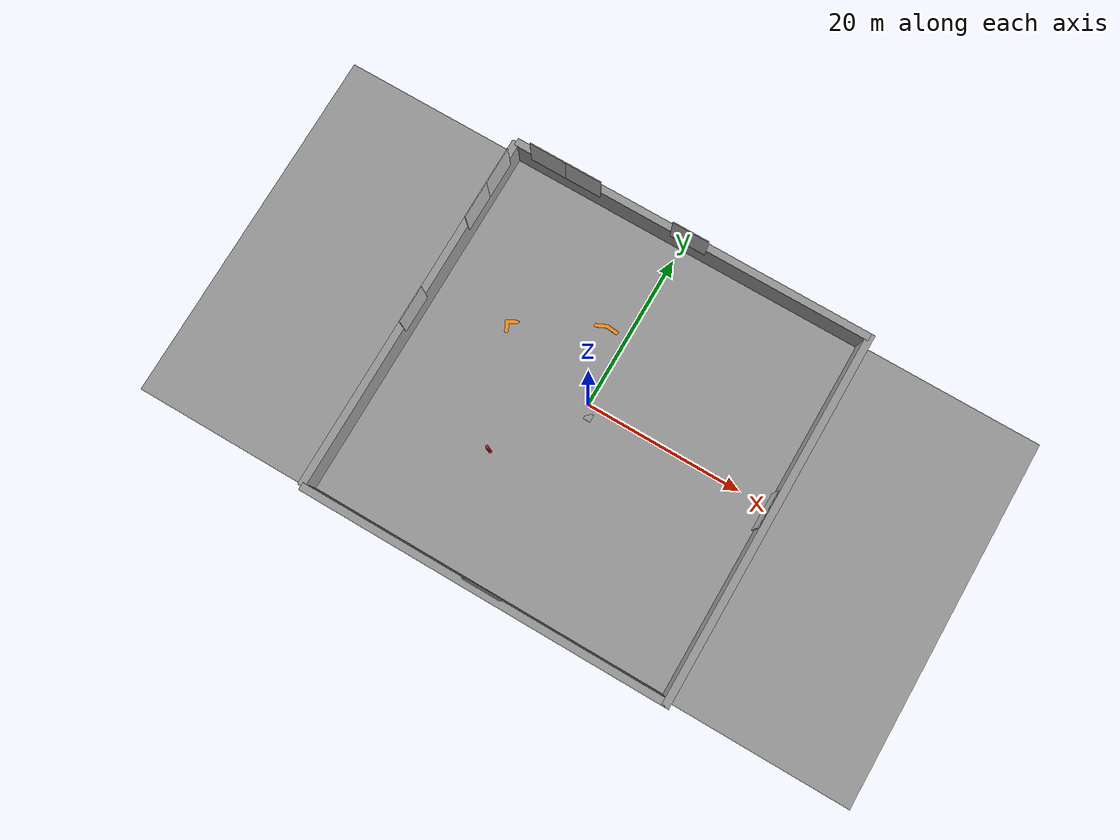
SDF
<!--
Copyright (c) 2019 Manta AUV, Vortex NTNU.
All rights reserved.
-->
<sdf version="1.5">
 <world name="empty_underwater">
  <physics name="default_physics" default="true" type="ode">
   <max_step_size>0.002</max_step_size>
   <real_time_factor>1</real_time_factor>
   <real_time_update_rate>500</real_time_update_rate>
   <ode><solver><type>quick</type><iters>50</iters><sor>0.5</sor></solver></ode>
  </physics>
  <scene>
   <ambient>0.01 0.01 0.01 1.0</ambient>
   <sky><clouds><speed>12</speed></clouds></sky>
   <shadows>1</shadows>
   <fog>
    <color>0.1 0.2 0.3 1.0</color>
    <type>linear</type>
    <density>0.001</density>
    <start>10</start>
    <end>200</end>
   </fog>
  </scene>
  <spherical_coordinates>
   <latitude_deg>56.71897669633431</latitude_deg>
   <longitude_deg>3.515625</longitude_deg>
  </spherical_coordinates>
  <include><uri>model://sun</uri></include>
  <include><name>pool</name><pose>0 0 -9 0 0 0</pose><uri>model://2019/pool</uri></include>
  <include><name>pole</name><pose>-8 -10 -5 0 0 0</pose><uri>model://2019/pole</uri></include>
  <include><name>30deg</name><pose>-2.5 12 -8.49 1.57 0 -1.15</pose><uri>model://2019/30deg</uri></include>
  <include><name>90deg</name><pose>-15 5.5 -8.49 0 0 0.45</pose><uri>model://2019/90deg</uri></include>
  <include><name>Dragur</name><uri>model://2019/vampire_logo</uri></include>
  <include><name>vortex1</name><pose>25 0 -3 0 -1.57 0</pose><uri>model://2019/vortex_logo</uri></include>
  <include><name>vortex2</name><pose>-25.5 0 -3 0 -1.57 3.14</pose><uri>model://2019/vortex_logo</uri></include>
  <include>
   <name>vortex3</name>
   <pose>0 -25.5 -3 1.57 -1.57 3.14</pose>
   <uri>model://2019/vortex_logo</uri>
  </include>
  <include>
   <name>vortex4</name>
   <pose>0 25.5 -3 -1.57 -1.57 3.14</pose>
   <uri>model://2019/vortex_logo</uri>
  </include>
  <light type="directional" name="sun0">
   <pose>8 -21 10 0 0.8 -2.8</pose>
   <diffuse>0.8 0.8 0.8 1</diffuse>
   <specular>0.2 0.2 0.2 1</specular>
   <attenuation>
    <range>1000</range>
    <constant>0.9</constant>
    <linear>0.01</linear>
    <quadratic>0.001</quadratic>
   </attenuation>
   <direction>-0.5 0.1 -0.9</direction>
  </light>
  <light type="directional" name="sun1">
   <pose>8 -20 10 0 0.8 0</pose>
   <diffuse>0.8 0.8 0.8 1</diffuse>
   <specular>0.2 0.2 0.2 1</specular>
   <attenuation>
    <range>1000</range>
    <constant>0.9</constant>
    <linear>0.01</linear>
    <quadratic>0.001</quadratic>
   </attenuation>
   <direction>-0.5 0.1 -0.9</direction>
  </light>
  <light type="directional" name="sun2">
   <pose>8 -19 10 0 0 0</pose>
   <diffuse>0.8 0.8 0.8 1</diffuse>
   <specular>0.2 0.2 0.2 1</specular>
   <attenuation>
    <range>1000</range>
    <constant>0.9</constant>
    <linear>0.01</linear>
    <quadratic>0.001</quadratic>
   </attenuation>
   <direction>-0.5 0.1 -0.9</direction>
  </light>
  <light type="directional" name="sun3">
   <pose>8 -19 10 1.75 0 0</pose>
   <diffuse>0.8 0.8 0.8 1</diffuse>
   <specular>0.2 0.2 0.2 1</specular>
   <attenuation>
    <range>1000</range>
    <constant>0.9</constant>
    <linear>0.01</linear>
    <quadratic>0.001</quadratic>
   </attenuation>
   <direction>-0.5 0.1 -0.9</direction>
  </light>
  <light type="directional" name="sun4">
   <pose>8 -19 10 1.75 0 2.9</pose>
   <diffuse>0.8 0.8 0.8 1</diffuse>
   <specular>0.2 0.2 0.2 1</specular>
   <attenuation>
    <range>1000</range>
    <constant>0.9</constant>
    <linear>0.01</linear>
    <quadratic>0.001</quadratic>
   </attenuation>
   <direction>-0.5 0.1 -0.9</direction>
  </light>
  <plugin name="underwater_current_plugin" filename="libuuv_underwater_current_ros_plugin.so">
   <namespace>hydrodynamics</namespace>
   <constant_current>
    <topic>current_velocity</topic>
    <velocity><mean>0</mean><min>0</min><max>5</max><mu>0.0</mu><noiseAmp>0.0</noiseAmp></velocity>
    <horizontal_angle>
     <mean>0</mean>
     <min>-3.141592653589793238</min>
     <max>3.141592653589793238</max>
     <mu>0.0</mu>
     <noiseAmp>0.0</noiseAmp>
    </horizontal_angle>
    <vertical_angle>
     <mean>0</mean>
     <min>-3.141592653589793238</min>
     <max>3.141592653589793238</max>
     <mu>0.0</mu>
     <noiseAmp>0.0</noiseAmp>
    </vertical_angle>
   </constant_current>
  </plugin>
  <plugin name="sc_interface" filename="libuuv_sc_ros_interface_plugin.so"/>
 </world>
</sdf>

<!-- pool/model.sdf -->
<sdf version='1.6'>
  <model name='pool'>
    <link name='link_0'>
      <pose frame=''>0 0 0 0 -0 0</pose>
      <inertial>
        <mass>1</mass>
        <inertia>
          <ixx>0.166667</ixx>
          <ixy>0</ixy>
          <ixz>0</ixz>
          <iyy>0.166667</iyy>
          <iyz>0</iyz>
          <izz>0.166667</izz>
        </inertia>
        <pose frame=''>0 0 0 0 -0 0</pose>
      </inertial>
      <gravity>1</gravity>
      <self_collide>0</self_collide>
      <kinematic>0</kinematic>
      <visual name='ModelPreview_0::link_0::visual_2'>
        <pose frame=''>0 0 0 0 -0 0</pose>
        <geometry>
          <box>
            <size>100 50 1</size>
          </box>
        </geometry>
        <material>
          <lighting>1</lighting>
          <script>
            <uri>file://media/materials/scripts/gazebo.material</uri>
            <name>Gazebo/Grey</name>
          </script>
          <ambient>0.3 0.3 0.3 1</ambient>
          <diffuse>0.7 0.7 0.7 1</diffuse>
          <specular>0.01 0.01 0.01 1</specular>
          <emissive>0 0 0 1</emissive>
          <shader type='vertex'>
            <normal_map>__default__</normal_map>
          </shader>
        </material>
        <cast_shadows>1</cast_shadows>
        <transparency>0</transparency>
      </visual>
      <visual name='ModelPreview_0::link_0::visual_3'>
        <pose frame=''>0 0 0 0 -0 0</pose>
        <geometry>
          <box>
            <size>100 50 1</size>
          </box>
        </geometry>
        <material>
          <lighting>1</lighting>
          <script>
            <uri>file://media/materials/scripts/gazebo.material</uri>
            <name>Gazebo/Grey</name>
          </script>
          <ambient>0.3 0.3 0.3 1</ambient>
          <diffuse>0.7 0.7 0.7 1</diffuse>
          <specular>0.01 0.01 0.01 1</specular>
          <emissive>0 0 0 1</emissive>
          <shader type='vertex'>
            <normal_map>__default__</normal_map>
          </shader>
        </material>
        <cast_shadows>1</cast_shadows>
        <transparency>0</transparency>
      </visual>
      <visual name='ModelPreview_0::link_0::visual_4'>
        <pose frame=''>0 0 0 0 -0 0</pose>
        <geometry>
          <box>
            <size>100 50 1</size>
          </box>
        </geometry>
        <material>
          <lighting>1</lighting>
          <script>
            <uri>file://media/materials/scripts/gazebo.material</uri>
            <name>Gazebo/Grey</name>
          </script>
          <ambient>0.3 0.3 0.3 1</ambient>
          <diffuse>0.7 0.7 0.7 1</diffuse>
          <specular>0.01 0.01 0.01 1</specular>
          <emissive>0 0 0 1</emissive>
          <shader type='vertex'>
            <normal_map>__default__</normal_map>
          </shader>
        </material>
        <cast_shadows>1</cast_shadows>
        <transparency>0</transparency>
      </visual>
      <visual name='visual'>
        <pose frame=''>0 0 0 0 -0 0</pose>
        <geometry>
          <box>
            <size>50 50 1</size>
          </box>
        </geometry>
        <material>
          <lighting>1</lighting>
          <script>
            <uri>file://media/materials/scripts/gazebo.material</uri>
            <name>Gazebo/Grey</name>
          </script>
          <ambient>0.3 0.3 0.3 1</ambient>
          <diffuse>0.7 0.7 0.7 1</diffuse>
          <specular>0.01 0.01 0.01 1</specular>
          <emissive>0 0 0 1</emissive>
          <shader type='vertex'>
            <normal_map>__default__</normal_map>
          </shader>
        </material>
        <cast_shadows>1</cast_shadows>
        <transparency>0</transparency>
      </visual>
      <visual name='ModelPreview_0::link_0::visual_1'>
        <pose frame=''>0 0 0 0 -0 0</pose>
        <geometry>
          <box>
            <size>100 50 1</size>
          </box>
        </geometry>
        <material>
          <lighting>1</lighting>
          <script>
            <uri>file://media/materials/scripts/gazebo.material</uri>
            <name>Gazebo/Grey</name>
          </script>
          <ambient>0.3 0.3 0.3 1</ambient>
          <diffuse>0.7 0.7 0.7 1</diffuse>
          <specular>0.01 0.01 0.01 1</specular>
          <emissive>0 0 0 1</emissive>
          <shader type='vertex'>
            <normal_map>__default__</normal_map>
          </shader>
        </material>
        <cast_shadows>1</cast_shadows>
        <transparency>0</transparency>
      </visual>
      <visual name='ModelPreview_0::link_0::visual_5'>
        <pose frame=''>0 0 0 0 -0 0</pose>
        <geometry>
          <box>
            <size>100 50 1</size>
          </box>
        </geometry>
        <material>
          <lighting>1</lighting>
          <script>
            <uri>file://media/materials/scripts/gazebo.material</uri>
            <name>Gazebo/Grey</name>
          </script>
          <ambient>0.3 0.3 0.3 1</ambient>
          <diffuse>0.7 0.7 0.7 1</diffuse>
          <specular>0.01 0.01 0.01 1</specular>
          <emissive>0 0 0 1</emissive>
          <shader type='vertex'>
            <normal_map>__default__</normal_map>
          </shader>
        </material>
        <cast_shadows>1</cast_shadows>
        <transparency>0</transparency>
      </visual>
      <collision name='collision'>
        <laser_retro>0</laser_retro>
        <max_contacts>10</max_contacts>
        <pose frame=''>0 0 0 0 -0 0</pose>
        <geometry>
          <box>
            <size>50 50 1</size>
          </box>
        </geometry>
        <surface>
          <friction>
            <ode>
              <mu>1</mu>
              <mu2>1</mu2>
              <fdir1>0 0 0</fdir1>
              <slip1>0</slip1>
              <slip2>0</slip2>
            </ode>
            <torsional>
              <coefficient>1</coefficient>
              <patch_radius>0</patch_radius>
              <surface_radius>0</surface_radius>
              <use_patch_radius>1</use_patch_radius>
              <ode>
                <slip>0</slip>
              </ode>
            </torsional>
          </friction>
          <bounce>
            <restitution_coefficient>0</restitution_coefficient>
            <threshold>1e+06</threshold>
          </bounce>
          <contact>
            <collide_without_contact>0</collide_without_contact>
            <collide_without_contact_bitmask>1</collide_without_contact_bitmask>
            <collide_bitmask>1</collide_bitmask>
            <ode>
              <soft_cfm>0</soft_cfm>
              <soft_erp>0.2</soft_erp>
              <kp>1e+13</kp>
              <kd>1</kd>
              <max_vel>0.01</max_vel>
              <min_depth>0</min_depth>
            </ode>
            <bullet>
              <split_impulse>1</split_impulse>
              <split_impulse_penetration_threshold>-0.01</split_impulse_penetration_threshold>
              <soft_cfm>0</soft_cfm>
              <soft_erp>0.2</soft_erp>
              <kp>1e+13</kp>
              <kd>1</kd>
            </bullet>
          </contact>
        </surface>
      </collision>
    </link>
    <link name='link_1'>
      <pose frame=''>0 0 0 0 -0 0</pose>
      <inertial>
        <mass>1</mass>
        <inertia>
          <ixx>0.166667</ixx>
          <ixy>0</ixy>
          <ixz>0</ixz>
          <iyy>0.166667</iyy>
          <iyz>0</iyz>
          <izz>0.166667</izz>
        </inertia>
        <pose frame=''>0 0 0 0 -0 0</pose>
      </inertial>
      <gravity>1</gravity>
      <self_collide>0</self_collide>
      <kinematic>0</kinematic>
      <visual name='visual'>
        <pose frame=''>0 25 0 0 -0 0</pose>
        <geometry>
          <box>
            <size>50 1 10</size>
          </box>
        </geometry>
        <material>
          <lighting>1</lighting>
          <script>
            <uri>file://media/materials/scripts/gazebo.material</uri>
            <name>Gazebo/Grey</name>
          </script>
          <ambient>0.3 0.3 0.3 1</ambient>
          <diffuse>0.7 0.7 0.7 1</diffuse>
          <specular>0.01 0.01 0.01 1</specular>
          <emissive>0 0 0 1</emissive>
          <shader type='vertex'>
            <normal_map>__default__</normal_map>
          </shader>
        </material>
        <cast_shadows>1</cast_shadows>
        <transparency>0</transparency>
      </visual>
      <collision name='collision'>
        <laser_retro>0</laser_retro>
        <max_contacts>10</max_contacts>
        <pose frame=''>0 25 0 0 -0 0</pose>
        <geometry>
          <box>
            <size>50 1 10</size>
          </box>
        </geometry>
        <surface>
          <friction>
            <ode>
              <mu>1</mu>
              <mu2>1</mu2>
              <fdir1>0 0 0</fdir1>
              <slip1>0</slip1>
              <slip2>0</slip2>
            </ode>
            <torsional>
              <coefficient>1</coefficient>
              <patch_radius>0</patch_radius>
              <surface_radius>0</surface_radius>
              <use_patch_radius>1</use_patch_radius>
              <ode>
                <slip>0</slip>
              </ode>
            </torsional>
          </friction>
          <bounce>
            <restitution_coefficient>0</restitution_coefficient>
            <threshold>1e+06</threshold>
          </bounce>
          <contact>
            <collide_without_contact>0</collide_without_contact>
            <collide_without_contact_bitmask>1</collide_without_contact_bitmask>
            <collide_bitmask>1</collide_bitmask>
            <ode>
              <soft_cfm>0</soft_cfm>
              <soft_erp>0.2</soft_erp>
              <kp>1e+13</kp>
              <kd>1</kd>
              <max_vel>0.01</max_vel>
              <min_depth>0</min_depth>
            </ode>
            <bullet>
              <split_impulse>1</split_impulse>
              <split_impulse_penetration_threshold>-0.01</split_impulse_penetration_threshold>
              <soft_cfm>0</soft_cfm>
              <soft_erp>0.2</soft_erp>
              <kp>1e+13</kp>
              <kd>1</kd>
            </bullet>
          </contact>
        </surface>
      </collision>
    </link>
    <link name='link_4'>
      <pose frame=''>0 0 0 0 -0 0</pose>
      <inertial>
        <mass>1</mass>
        <inertia>
          <ixx>0.166667</ixx>
          <ixy>0</ixy>
          <ixz>0</ixz>
          <iyy>0.166667</iyy>
          <iyz>0</iyz>
          <izz>0.166667</izz>
        </inertia>
        <pose frame=''>0 0 0 0 -0 0</pose>
      </inertial>
      <gravity>1</gravity>
      <self_collide>0</self_collide>
      <kinematic>0</kinematic>
      <visual name='visual'>
        <pose frame=''>-25 0 0 0 -0 0</pose>
        <geometry>
          <box>
            <size>1 50 10</size>
          </box>
        </geometry>
        <material>
          <lighting>1</lighting>
          <script>
            <uri>file://media/materials/scripts/gazebo.material</uri>
            <name>Gazebo/Grey</name>
          </script>
          <ambient>0.3 0.3 0.3 1</ambient>
          <diffuse>0.7 0.7 0.7 1</diffuse>
          <specular>0.01 0.01 0.01 1</specular>
          <emissive>0 0 0 1</emissive>
          <shader type='vertex'>
            <normal_map>__default__</normal_map>
          </shader>
        </material>
        <cast_shadows>1</cast_shadows>
        <transparency>0</transparency>
      </visual>
      <visual name='ModelPreview_0::link_4::visual_1'>
        <pose frame=''>0 0 0 0 -0 0</pose>
        <geometry>
          <box>
            <size>1 1 1</size>
          </box>
        </geometry>
        <material>
          <lighting>1</lighting>
          <script>
            <uri>file://media/materials/scripts/gazebo.material</uri>
            <name>Gazebo/Grey</name>
          </script>
          <ambient>0.3 0.3 0.3 1</ambient>
          <diffuse>0.7 0.7 0.7 1</diffuse>
          <specular>0.01 0.01 0.01 1</specular>
          <emissive>0 0 0 1</emissive>
          <shader type='vertex'>
            <normal_map>__default__</normal_map>
          </shader>
        </material>
        <cast_shadows>1</cast_shadows>
        <transparency>0</transparency>
      </visual>
      <collision name='collision'>
        <laser_retro>0</laser_retro>
        <max_contacts>10</max_contacts>
        <pose frame=''>-25 0 0 0 -0 0</pose>
        <geometry>
          <box>
            <size>1 51 10</size>
          </box>
        </geometry>
        <surface>
          <friction>
            <ode>
              <mu>1</mu>
              <mu2>1</mu2>
              <fdir1>0 0 0</fdir1>
              <slip1>0</slip1>
              <slip2>0</slip2>
            </ode>
            <torsional>
              <coefficient>1</coefficient>
              <patch_radius>0</patch_radius>
              <surface_radius>0</surface_radius>
              <use_patch_radius>1</use_patch_radius>
              <ode>
                <slip>0</slip>
              </ode>
            </torsional>
          </friction>
          <bounce>
            <restitution_coefficient>0</restitution_coefficient>
            <threshold>1e+06</threshold>
          </bounce>
          <contact>
            <collide_without_contact>0</collide_without_contact>
            <collide_without_contact_bitmask>1</collide_without_contact_bitmask>
            <collide_bitmask>1</collide_bitmask>
            <ode>
              <soft_cfm>0</soft_cfm>
              <soft_erp>0.2</soft_erp>
              <kp>1e+13</kp>
              <kd>1</kd>
              <max_vel>0.01</max_vel>
              <min_depth>0</min_depth>
            </ode>
            <bullet>
              <split_impulse>1</split_impulse>
              <split_impulse_penetration_threshold>-0.01</split_impulse_penetration_threshold>
              <soft_cfm>0</soft_cfm>
              <soft_erp>0.2</soft_erp>
              <kp>1e+13</kp>
              <kd>1</kd>
            </bullet>
          </contact>
        </surface>
      </collision>
    </link>
    <link name='link_5'>
      <pose frame=''>0 0 0 0 -0 0</pose>
      <inertial>
        <mass>1</mass>
        <inertia>
          <ixx>0.166667</ixx>
          <ixy>0</ixy>
          <ixz>0</ixz>
          <iyy>0.166667</iyy>
          <iyz>0</iyz>
          <izz>0.166667</izz>
        </inertia>
        <pose frame=''>0 0 0 0 -0 0</pose>
      </inertial>
      <gravity>1</gravity>
      <self_collide>0</self_collide>
      <kinematic>0</kinematic>
      <visual name='visual'>
        <pose frame=''>25 0 0 0 -0 0</pose>
        <geometry>
          <box>
            <size>1 51 10</size>
          </box>
        </geometry>
        <material>
          <lighting>1</lighting>
          <script>
            <uri>file://media/materials/scripts/gazebo.material</uri>
            <name>Gazebo/Grey</name>
          </script>
          <ambient>0.3 0.3 0.3 1</ambient>
          <diffuse>0.7 0.7 0.7 1</diffuse>
          <specular>0.01 0.01 0.01 1</specular>
          <emissive>0 0 0 1</emissive>
          <shader type='vertex'>
            <normal_map>__default__</normal_map>
          </shader>
        </material>
        <cast_shadows>1</cast_shadows>
        <transparency>0</transparency>
      </visual>
      <collision name='collision'>
        <laser_retro>0</laser_retro>
        <max_contacts>10</max_contacts>
        <pose frame=''>25 0 0 0 -0 0</pose>
        <geometry>
          <box>
            <size>1 51 10</size>
          </box>
        </geometry>
        <surface>
          <friction>
            <ode>
              <mu>1</mu>
              <mu2>1</mu2>
              <fdir1>0 0 0</fdir1>
              <slip1>0</slip1>
              <slip2>0</slip2>
            </ode>
            <torsional>
              <coefficient>1</coefficient>
              <patch_radius>0</patch_radius>
              <surface_radius>0</surface_radius>
              <use_patch_radius>1</use_patch_radius>
              <ode>
                <slip>0</slip>
              </ode>
            </torsional>
          </friction>
          <bounce>
            <restitution_coefficient>0</restitution_coefficient>
            <threshold>1e+06</threshold>
          </bounce>
          <contact>
            <collide_without_contact>0</collide_without_contact>
            <collide_without_contact_bitmask>1</collide_without_contact_bitmask>
            <collide_bitmask>1</collide_bitmask>
            <ode>
              <soft_cfm>0</soft_cfm>
              <soft_erp>0.2</soft_erp>
              <kp>1e+13</kp>
              <kd>1</kd>
              <max_vel>0.01</max_vel>
              <min_depth>0</min_depth>
            </ode>
            <bullet>
              <split_impulse>1</split_impulse>
              <split_impulse_penetration_threshold>-0.01</split_impulse_penetration_threshold>
              <soft_cfm>0</soft_cfm>
              <soft_erp>0.2</soft_erp>
              <kp>1e+13</kp>
              <kd>1</kd>
            </bullet>
          </contact>
        </surface>
      </collision>
    </link>
    <link name='link_6'>
      <pose frame=''>0 0 0 0 -0 0</pose>
      <inertial>
        <mass>1</mass>
        <inertia>
          <ixx>0.166667</ixx>
          <ixy>0</ixy>
          <ixz>0</ixz>
          <iyy>0.166667</iyy>
          <iyz>0</iyz>
          <izz>0.166667</izz>
        </inertia>
        <pose frame=''>0 0 0 0 -0 0</pose>
      </inertial>
      <gravity>1</gravity>
      <self_collide>0</self_collide>
      <kinematic>0</kinematic>
      <visual name='visual'>
        <pose frame=''>0 -25 0 0 -0 0</pose>
        <geometry>
          <box>
            <size>50 1 10</size>
          </box>
        </geometry>
        <material>
          <lighting>1</lighting>
          <script>
            <uri>file://media/materials/scripts/gazebo.material</uri>
            <name>Gazebo/Grey</name>
          </script>
          <ambient>0.3 0.3 0.3 1</ambient>
          <diffuse>0.7 0.7 0.7 1</diffuse>
          <specular>0.01 0.01 0.01 1</specular>
          <emissive>0 0 0 1</emissive>
          <shader type='vertex'>
            <normal_map>__default__</normal_map>
          </shader>
        </material>
        <cast_shadows>1</cast_shadows>
        <transparency>0</transparency>
      </visual>
      <collision name='collision'>
        <laser_retro>0</laser_retro>
        <max_contacts>10</max_contacts>
        <pose frame=''>0 -25 0 0 -0 0</pose>
        <geometry>
          <box>
            <size>50 1 10</size>
          </box>
        </geometry>
        <surface>
          <friction>
            <ode>
              <mu>1</mu>
              <mu2>1</mu2>
              <fdir1>0 0 0</fdir1>
              <slip1>0</slip1>
              <slip2>0</slip2>
            </ode>
            <torsional>
              <coefficient>1</coefficient>
              <patch_radius>0</patch_radius>
              <surface_radius>0</surface_radius>
              <use_patch_radius>1</use_patch_radius>
              <ode>
                <slip>0</slip>
              </ode>
            </torsional>
          </friction>
          <bounce>
            <restitution_coefficient>0</restitution_coefficient>
            <threshold>1e+06</threshold>
          </bounce>
          <contact>
            <collide_without_contact>0</collide_without_contact>
            <collide_without_contact_bitmask>1</collide_without_contact_bitmask>
            <collide_bitmask>1</collide_bitmask>
            <ode>
              <soft_cfm>0</soft_cfm>
              <soft_erp>0.2</soft_erp>
              <kp>1e+13</kp>
              <kd>1</kd>
              <max_vel>0.01</max_vel>
              <min_depth>0</min_depth>
            </ode>
            <bullet>
              <split_impulse>1</split_impulse>
              <split_impulse_penetration_threshold>-0.01</split_impulse_penetration_threshold>
              <soft_cfm>0</soft_cfm>
              <soft_erp>0.2</soft_erp>
              <kp>1e+13</kp>
              <kd>1</kd>
            </bullet>
          </contact>
        </surface>
      </collision>
    </link>
    <static>0</static>
    <allow_auto_disable>1</allow_auto_disable>
  </model>
</sdf>

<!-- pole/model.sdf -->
<sdf version='1.6'>
  <model name='pole'>
    <link name='link_0'>
      <pose frame=''>0 0 0 0 -0 0</pose>
      <self_collide>0</self_collide>
      <kinematic>0</kinematic>
      <visual name='ModelPreview_0::link_0::visual_1'>
        <pose frame=''>0 0 0 0 -0 0</pose>
        <geometry>
          <cylinder>
            <radius>0.2</radius>
            <length>3</length>
          </cylinder>
        </geometry>
        <material>
          <lighting>1</lighting>
          <script>
            <uri>file://media/materials/scripts/gazebo.material</uri>
            <name>Gazebo/Grey</name>
          </script>
          <ambient>0.8 0.1 0.1 1</ambient>
          <diffuse>0.8 0.1 0.1 1</diffuse>
          <specular>0.01 0.01 0.01 1</specular>
          <emissive>0 0 0 1</emissive>
          <shader type='vertex'>
            <normal_map>__default__</normal_map>
          </shader>
        </material>
        <cast_shadows>1</cast_shadows>
        <transparency>0</transparency>
      </visual>
      <visual name='visual'>
        <pose frame=''>0 0 1.5 0 -0 0</pose>
        <geometry>
          <cylinder>
            <radius>0.2</radius>
            <length>3</length>
          </cylinder>
        </geometry>
        <material>
          <lighting>1</lighting>
          <script>
            <uri>file://media/materials/scripts/gazebo.material</uri>
            <name>Gazebo/Grey</name>
          </script>
          <ambient>0.8 0.1 0.1 1</ambient>
          <diffuse>0.8 0.1 0.1 1</diffuse>
          <specular>0.01 0.01 0.01 1</specular>
          <emissive>0 0 0 1</emissive>
          <shader type='vertex'>
            <normal_map>__default__</normal_map>
          </shader>
        </material>
        <cast_shadows>1</cast_shadows>
        <transparency>0</transparency>
      </visual>
      <collision name='collision'>
        <laser_retro>0</laser_retro>
        <max_contacts>10</max_contacts>
        <pose frame=''>0 0 1.5 0 -0 0</pose>
        <geometry>
          <cylinder>
            <radius>0.2</radius>
            <length>3</length>
          </cylinder>
        </geometry>
      </collision>
      <gravity>0</gravity>
      <static>0</static>
    </link>
  </model>
</sdf>

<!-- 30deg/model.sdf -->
<sdf version="1.6">
  <model name="30deg">
    <static>true</static>
    <link name="link">
      <collision name="collision">
        <geometry>
          <mesh>
            <scale>1 1 1</scale>
            <uri>model://30deg/meshes/30deg.dae</uri>
          </mesh>
        </geometry>
      </collision>
      <visual name="visual">
        <geometry>
          <mesh>
            <scale>1 1 1</scale>
            <uri>model://30deg/meshes/30deg.dae</uri>
          </mesh>
        </geometry>
	<material>
	  <script>
            <uri>file://media/materials/scripts/gazebo.material</uri>
	    <name>Gazebo/Orange</name>
	  </script>
	</material>
      </visual>
    </link>
  </model>
</sdf>

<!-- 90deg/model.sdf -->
<sdf version="1.6">
  <model name="90deg">
    <static>true</static>
    <link name="link">
      <collision name="collision">
        <geometry>
          <mesh>
            <scale>0.001 0.001 0.001</scale>
            <uri>model://90deg/meshes/90deg.dae</uri>
          </mesh>
        </geometry>
      </collision>
      <visual name="visual">
        <geometry>
          <mesh>
            <scale>0.001 0.001 0.001</scale>
            <uri>model://90deg/meshes/90deg.dae</uri>
          </mesh>
        </geometry>
	<material>
	  <script>
            <uri>file://media/materials/scripts/gazebo.material</uri>
	    <name>Gazebo/Orange</name>
	  </script>
	</material>
      </visual>
    </link>
  </model>
</sdf>

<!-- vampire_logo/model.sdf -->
<sdf version='1.6'>

  <model name='vampire'>
    <link name='dragur'>
      <pose frame=''>0 0 0 0 -0 0</pose>
      <visual name='visual'>
        <pose frame=''>-20 24.49 -3 0 -1.57 1.57</pose>
        <geometry>
          <box>
            <size>5 5 0.1</size>
          </box>
        </geometry>
        <material>
          <script>
            <uri>model://2019/vampire_logo/materials/scripts</uri>
            <uri>model://2019/vampire_logo/materials/textures</uri>
            <name>dragur</name>
          </script>
        </material>
      </visual>
    </link>
    <static>1</static>

    <link name='aswang'>
      <pose frame=''>-0 0 0 0 -0 0</pose>
      <visual name='visual'>
        <pose frame=''>-24.49 20 -3 0 -1.57 3.14</pose>
        <geometry>
          <box>
            <size>5 5 0.1</size>
          </box>
        </geometry>
        <material>
          <script>
            <uri>model://2019/vampire_logo/materials/scripts</uri>
            <uri>model://2019/vampire_logo/materials/textures</uri>
            <name>aswang</name>
          </script>
        </material>
      </visual>
    </link>

    <link name='vetalas'>
      <pose frame=''>0 0 0 0 -0 0</pose>
      <visual name='visual'>
        <pose frame=''>-15 24.49 -3 0 -1.57 1.57</pose>
        <geometry>
          <box>
            <size>5 5 0.1</size>
          </box>
        </geometry>
        <material>
          <script>
            <uri>model://2019/vampire_logo/materials/scripts</uri>
            <uri>model://2019/vampire_logo/materials/textures</uri>
            <name>vetalas</name>
          </script>
        </material>
      </visual>
    </link>

    <link name='jiangshi'>
      <pose frame=''>0 0 0 0 -0 0</pose>
      <visual name='visual'>
        <pose frame=''>-24.49 15 -3 3.14 -1.57 0</pose>
        <geometry>
          <box>
            <size>5 5 0.1</size>
          </box>
        </geometry>
        <material>
          <script>
            <uri>model://2019/vampire_logo/materials/scripts</uri>
            <uri>model://2019/vampire_logo/materials/textures</uri>
            <name>jiangshi</name>
          </script>
        </material>
      </visual>
    </link>
    <static>1</static>
  </model>
</sdf>

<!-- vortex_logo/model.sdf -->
<sdf version='1.6'>
  <model name='vortex_logo'>
    <link name='link_18'>
      <pose frame=''>0 0 0 0 -0 0</pose>
      <visual name='visual'>
        <pose frame=''>0 0 1 0 -0 0</pose>
        <geometry>
          <box>
            <size>5 5 0.1</size>
          </box>
        </geometry>
        <material>
          <script>
            <uri>model://2019/vortex_logo/materials/scripts</uri>
            <uri>model://2019/vortex_logo/materials/textures</uri>
            <name>VortexLogo</name>
          </script>
        </material>
      </visual>
    </link>
    <static>1</static>
  </model>
</sdf>
